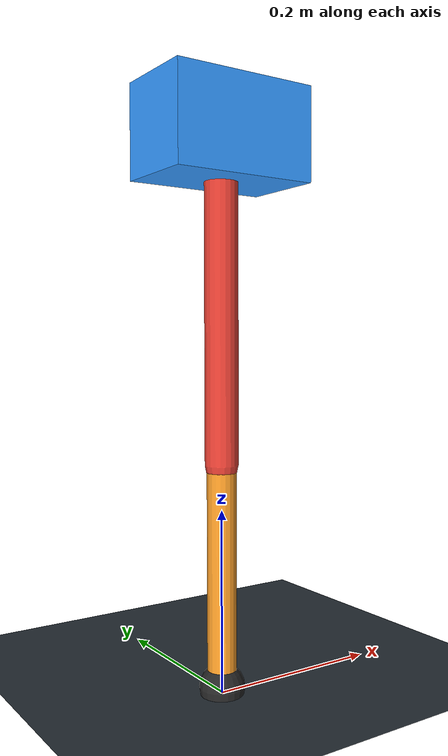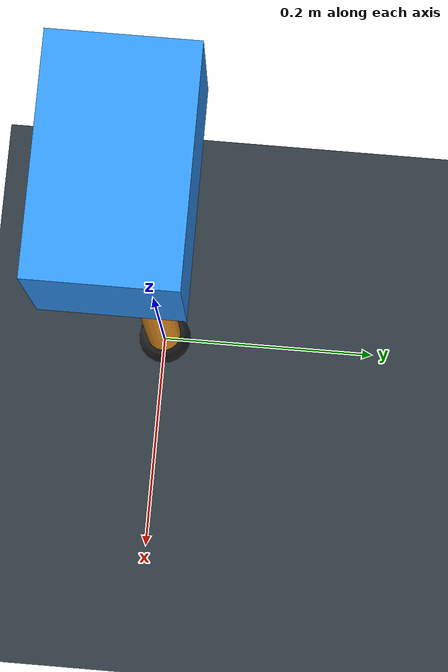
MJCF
<mujoco model="single_axis_two_bar">
  <compiler angle="radian" inertiafromgeom="true"/>
  <option timestep="0.001" integrator="implicitfast" gravity="0 0 -9.81"/>
  <default>
    <joint damping="0.08"/>
    <geom friction="1.2 0.01 0.0001" condim="3"/>
  </default>
  <worldbody>
    <geom name="floor" type="plane" size="5 5 0.1" rgba="0.18 0.22 0.25 1"/>
    <body name="carriage" pos="0 0 0.5974658377491392">
      <joint name="pole_slide" type="slide" axis="0 0 1"/>
      <geom name="payload" type="box" size="0.08 0.05 0.05" mass="2.6771148272202883" rgba="0.2 0.6 1 1"/>
      <body name="thigh" pos="0 0 0">
        <joint name="hip" type="hinge" axis="0 1 0"/>
        <geom name="thigh_link" type="capsule" fromto="0 0 0 0 0 -0.34849073853171914" size="0.018" mass="0.2483042561026769" rgba="0.9 0.25 0.2 1"/>
        <body name="shank" pos="0 0 -0.34849073853171914">
          <joint name="knee" type="hinge" axis="0 1 0"/>
          <geom name="shank_link" type="capsule" fromto="0 0 0 0 0 -0.2416802282199707" size="0.016" mass="0.17220035612918577" rgba="0.95 0.6 0.15 1"/>
          <geom name="foot" type="sphere" pos="0 0 -0.2416802282199707" size="0.025" mass="0.03" rgba="0.15 0.15 0.15 1"/>
          <site name="toe" pos="0 0 -0.2416802282199707" size="0.008"/>
        </body>
      </body>
    </body>
  </worldbody>
  <actuator>
    <motor name="hip_motor" joint="hip" ctrlrange="-25.19700711339842 25.19700711339842"/>
    <motor name="knee_motor" joint="knee" ctrlrange="-83.89765927971627 83.89765927971627"/>
  </actuator>
</mujoco>
